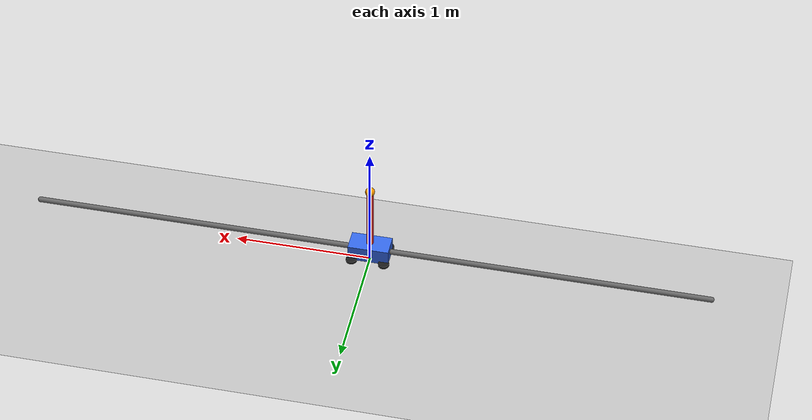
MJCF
<mujoco model="cartpole_balance">

    <option timestep="0.002"
            gravity="0 0 -9.81"
            integrator="RK4"/>

    <visual>
        <global fovy="45" linewidth="2"/>
        <quality shadowsize="2048"/>
        <map stiffness="700" shadowscale="0.5"/>
    </visual>

    <worldbody>

        <!-- Ground -->
        <geom type="plane"
              size="5 5 0.1"
              rgba="0.75 0.75 0.75 1"/>

        <!-- Rail / Track indicator -->
        <geom type="capsule"
              fromto="-2.5 0 0.1  2.5 0 0.1"
              size="0.02"
              rgba="0.4 0.4 0.4 1"/>

        <!-- Cart body (slides along X) -->
        <body name="cart" pos="0 0 0.1">

            <!-- Slide joint – cart can move ±2 m along X -->
            <joint name="cart_slide"
                   type="slide"
                   axis="1 0 0"
                   limited="true"
                   range="-1.5 1.5"
                   damping="2"/>

            <!-- Cart geometry -->
            <geom type="box"
                  size="0.15 0.08 0.06"
                  rgba="0.2 0.4 0.9 1"
                  mass="1.0"/>

            <!-- Wheel decorations (visual only) -->
            <geom type="cylinder" pos=" 0.12 0.09 -0.05" size="0.04 0.01" rgba="0.1 0.1 0.1 1"/>
            <geom type="cylinder" pos="-0.12 0.09 -0.05" size="0.04 0.01" rgba="0.1 0.1 0.1 1"/>
            <geom type="cylinder" pos=" 0.12 -0.09 -0.05" size="0.04 0.01" rgba="0.1 0.1 0.1 1"/>
            <geom type="cylinder" pos="-0.12 -0.09 -0.05" size="0.04 0.01" rgba="0.1 0.1 0.1 1"/>

            <!-- Pole mounted on top of cart -->
            <body name="pole" pos="0 0 0.06">

                <!-- Hinge joint (rotates in XZ plane, axis Y) -->
                <joint name="pole_hinge"
                       type="hinge"
                       axis="0 1 0"
                       damping="0"/>

                <!-- Pole geometry – extends upward -->
                <geom type="capsule"
                      fromto="0 0 0  0 0 0.5"
                      size="0.025"
                      rgba="0.9 0.2 0.2 1"
                      mass="0.3"/>

                <!-- Bob at tip for visual clarity -->
                <geom type="sphere"
                      pos="0 0 0.5"
                      size="0.035"
                      rgba="1.0 0.6 0.0 1"
                      mass="0.4"/>

            </body>

        </body>

    </worldbody>

    <actuator>
        <!-- Force on cart slide only (no direct torque on pole) -->
        <motor joint="cart_slide"
               ctrlrange="-25 25"
               gear="1"
               name="cart_force"/>
    </actuator>

    <!-- Default camera for a clean side view -->
    <visual>
        <headlight diffuse="0.6 0.6 0.6" ambient="0.3 0.3 0.3" specular="0.1 0.1 0.1"/>
    </visual>

</mujoco>
